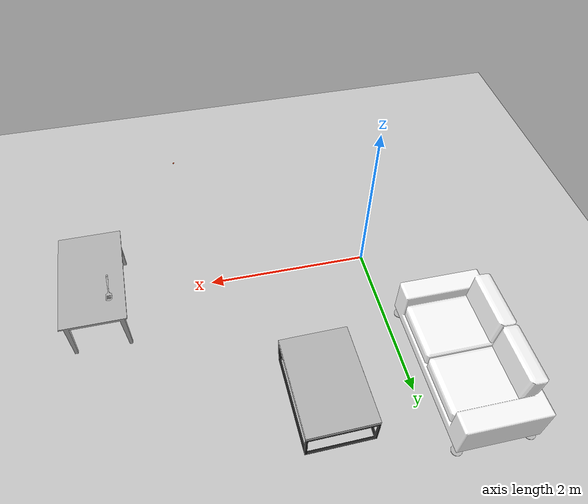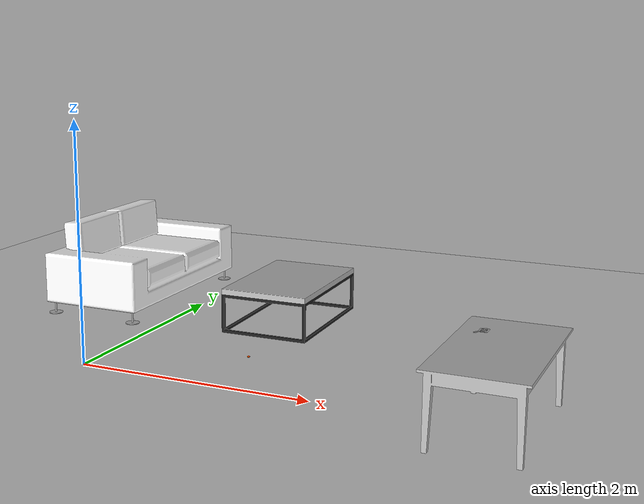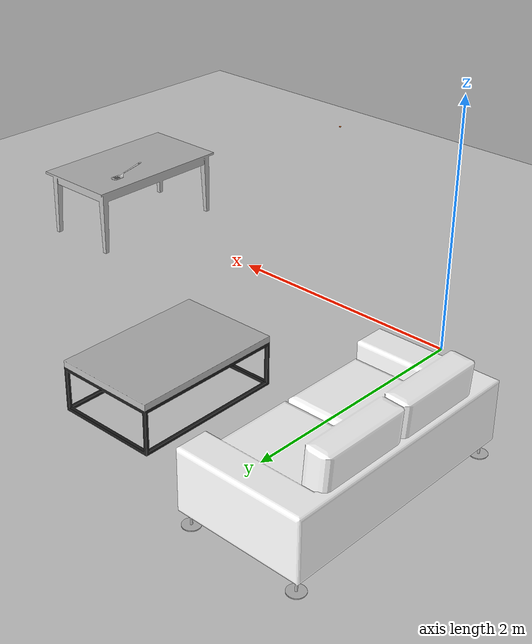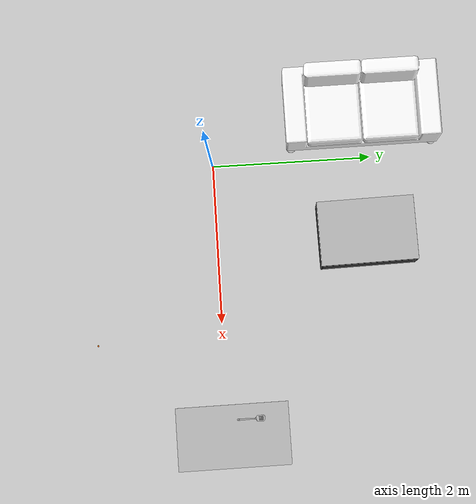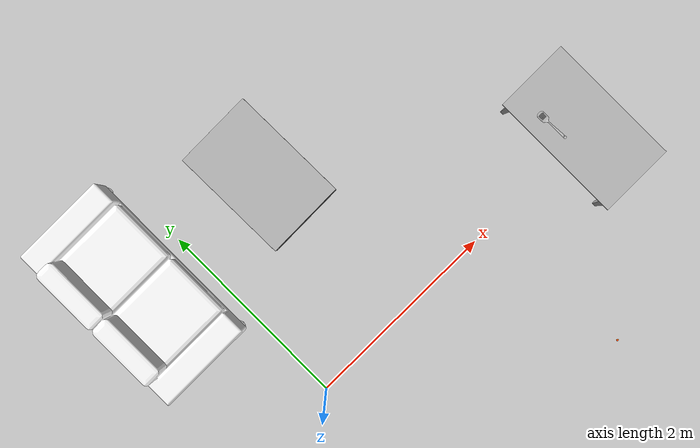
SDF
<sdf version="1.6">
 <world name="default">
  <model name="ground_plane">
   <static>1</static>
   <link name="link">
    <collision name="collision">
     <geometry><plane><normal>0 0 1</normal><size>100 100</size></plane></geometry>
     <surface>
      <contact><collide_bitmask>65535</collide_bitmask></contact>
      <friction><ode><mu>100</mu><mu2>50</mu2></ode></friction>
     </surface>
    </collision>
    <visual name="visual">
     <cast_shadows>0</cast_shadows>
     <geometry><plane><normal>0 0 1</normal><size>100 100</size></plane></geometry>
     <material>
      <script><uri>file://media/materials/scripts/gazebo.material</uri><name>Gazebo/Grey</name></script>
     </material>
    </visual>
   </link>
  </model>
  <light name="sun" type="directional">
   <pose>0 0 10 0 -0 0</pose>
   <diffuse>0.8 0.8 0.8 1</diffuse>
   <specular>0.2 0.2 0.2 1</specular>
   <attenuation>
    <range>1000</range>
    <constant>0.9</constant>
    <linear>0.01</linear>
    <quadratic>0.001</quadratic>
   </attenuation>
   <direction>-0.5 0.1 -0.9</direction>
  </light>
  <model name="couch">
   <link name="link">
    <visual name="visual"><geometry><mesh><uri>model://couch2/meshes/couch2.dae</uri></mesh></geometry></visual>
   </link>
   <static>1</static>
   <pose>-0.105698 0.944063 0.057897 0 0.003922 1.57431</pose>
  </model>
  <model name="dining">
   <link name="link">
    <visual name="visual">
     <geometry>
      <mesh><uri>model://dining_table1/meshes/dining_table1.dae</uri><scale>0.75 0.75 0.75</scale></mesh>
     </geometry>
    </visual>
   </link>
   <static>1</static>
   <pose>4.80768 1.75798 0.005673 0 0 -3.13618</pose>
  </model>
  <model name="spatula">
   <link name="link">
    <visual name="visual"><geometry><mesh><uri>model://spatula/meshes/spatula.dae</uri></mesh></geometry></visual>
   </link>
   <static>1</static>
   <pose>2.29824 0.118024 0.590611 0 -0 0</pose>
  </model>
  <model name="bowl">
   <link name="link">
    <visual name="visual"><geometry><mesh><uri>model://bowl/meshes/bowl.dae</uri></mesh></geometry></visual>
   </link>
   <static>1</static>
   <pose>2.22291 -1.43533 0.817958 0 -0 0</pose>
  </model>
  <model name="table">
   <link name="link">
    <visual name="visual">
     <geometry><mesh><uri>model://center_table/meshes/center_table.dae</uri></mesh></geometry>
    </visual>
   </link>
   <static>1</static>
   <pose>0.581075 2.46567 0 0 0 -1.55388</pose>
  </model>
  <gravity>0 0 -9.8</gravity>
  <magnetic_field>6e-06 2.3e-05 -4.2e-05</magnetic_field>
  <atmosphere type="adiabatic"/>
  <physics name="default_physics" default="0" type="ode">
   <max_step_size>0.001</max_step_size>
   <real_time_factor>1</real_time_factor>
   <real_time_update_rate>1000</real_time_update_rate>
  </physics>
  <scene><ambient>0.4 0.4 0.4 1</ambient><background>0.7 0.7 0.7 1</background><shadows>1</shadows></scene>
  <spherical_coordinates>
   <surface_model>EARTH_WGS84</surface_model>
   <latitude_deg>0</latitude_deg>
   <longitude_deg>0</longitude_deg>
   <elevation>0</elevation>
   <heading_deg>0</heading_deg>
  </spherical_coordinates>
 </world>
</sdf>
